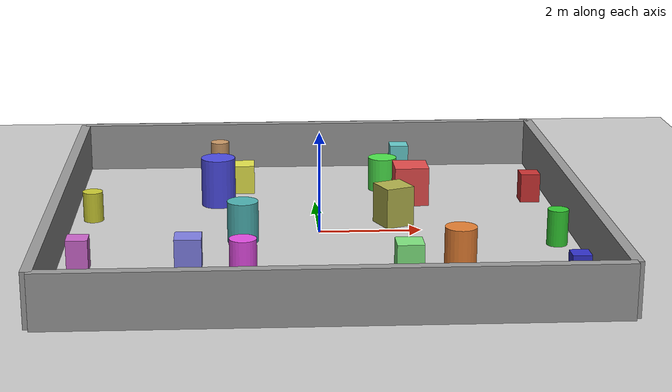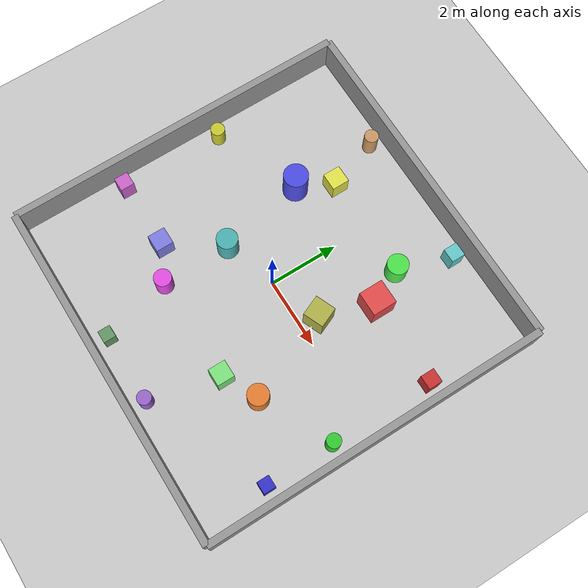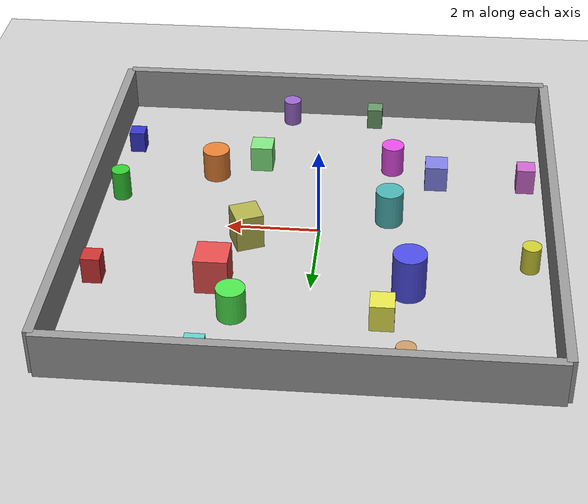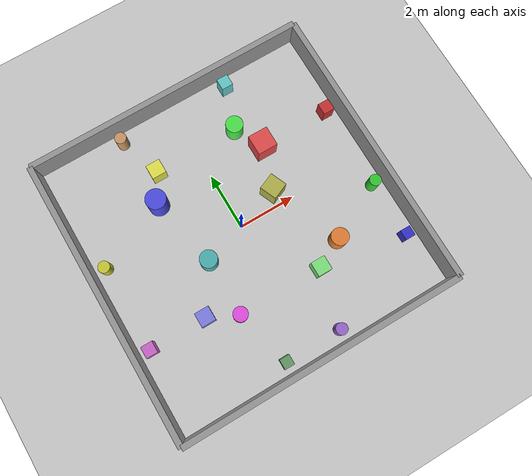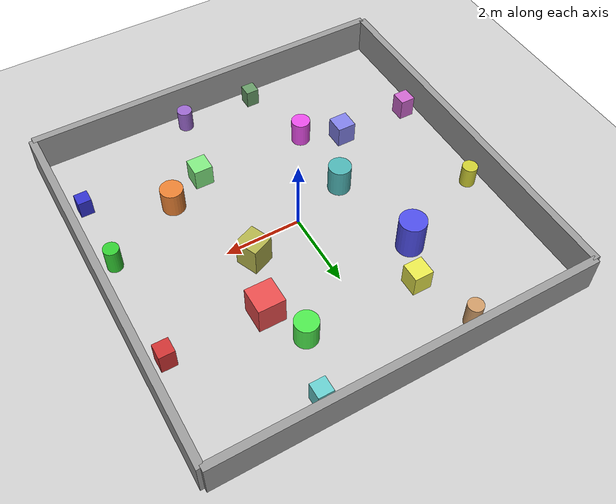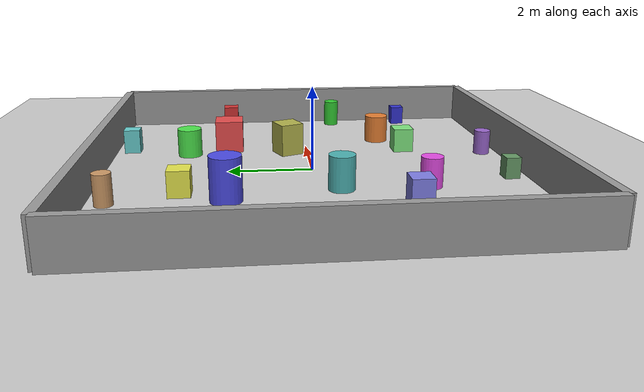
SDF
<?xml version="1.0" ?>
<sdf version="1.8">
  <world name="simple_dense_world">

    <!-- Physics settings -->
    <physics name="1ms" type="ignored">
      <max_step_size>0.001</max_step_size>
      <real_time_factor>1.0</real_time_factor>
      <real_time_update_rate>1000</real_time_update_rate>
    </physics>

    <!-- Required plugins for Gazebo Harmonic -->
    <plugin filename="gz-sim-physics-system" name="gz::sim::systems::Physics"/>
    <plugin filename="gz-sim-user-commands-system" name="gz::sim::systems::UserCommands"/>
    <plugin filename="gz-sim-scene-broadcaster-system" name="gz::sim::systems::SceneBroadcaster"/>
    <plugin filename="gz-sim-sensors-system" name="gz::sim::systems::Sensors">
      <render_engine>ogre2</render_engine>
    </plugin>
    <plugin filename="gz-sim-imu-system" name="gz::sim::systems::Imu"/>
    <plugin filename="gz-sim-contact-system" name="gz::sim::systems::Contact"/>

    <!-- Lighting -->
    <light type="directional" name="sun">
      <cast_shadows>true</cast_shadows>
      <pose>0 0 10 0 0 0</pose>
      <diffuse>0.8 0.8 0.8 1</diffuse>
      <specular>0.2 0.2 0.2 1</specular>
      <attenuation>
        <range>1000</range>
        <constant>0.9</constant>
        <linear>0.01</linear>
        <quadratic>0.001</quadratic>
      </attenuation>
      <direction>-0.5 0.1 -0.9</direction>
    </light>

    <!-- Ground plane -->
    <model name="ground_plane">
      <static>true</static>
      <link name="link">
        <collision name="collision">
          <geometry>
            <plane>
              <normal>0 0 1</normal>
              <size>100 100</size>
            </plane>
          </geometry>
          <surface>
            <friction>
              <ode>
                <mu>100</mu>
                <mu2>50</mu2>
              </ode>
            </friction>
          </surface>
        </collision>
        <visual name="visual">
          <geometry>
            <plane>
              <normal>0 0 1</normal>
              <size>100 100</size>
            </plane>
          </geometry>
          <material>
            <ambient>0.8 0.8 0.8 1</ambient>
            <diffuse>0.8 0.8 0.8 1</diffuse>
            <specular>0.8 0.8 0.8 1</specular>
          </material>
        </visual>
      </link>
    </model>

    <!-- Room walls - 10m x 10m room -->
    <!-- North wall -->
    <model name="wall_north">
      <static>true</static>
      <pose>0 5 0.5 0 0 0</pose>
      <link name="link">
        <collision name="collision">
          <geometry>
            <box><size>10 0.2 1.0</size></box>
          </geometry>
        </collision>
        <visual name="visual">
          <geometry>
            <box><size>10 0.2 1.0</size></box>
          </geometry>
          <material>
            <ambient>0.6 0.6 0.6 1</ambient>
            <diffuse>0.6 0.6 0.6 1</diffuse>
          </material>
        </visual>
      </link>
    </model>

    <!-- South wall -->
    <model name="wall_south">
      <static>true</static>
      <pose>0 -5 0.5 0 0 0</pose>
      <link name="link">
        <collision name="collision">
          <geometry>
            <box><size>10 0.2 1.0</size></box>
          </geometry>
        </collision>
        <visual name="visual">
          <geometry>
            <box><size>10 0.2 1.0</size></box>
          </geometry>
          <material>
            <ambient>0.6 0.6 0.6 1</ambient>
            <diffuse>0.6 0.6 0.6 1</diffuse>
          </material>
        </visual>
      </link>
    </model>

    <!-- East wall -->
    <model name="wall_east">
      <static>true</static>
      <pose>5 0 0.5 0 0 0</pose>
      <link name="link">
        <collision name="collision">
          <geometry>
            <box><size>0.2 10 1.0</size></box>
          </geometry>
        </collision>
        <visual name="visual">
          <geometry>
            <box><size>0.2 10 1.0</size></box>
          </geometry>
          <material>
            <ambient>0.6 0.6 0.6 1</ambient>
            <diffuse>0.6 0.6 0.6 1</diffuse>
          </material>
        </visual>
      </link>
    </model>

    <!-- West wall -->
    <model name="wall_west">
      <static>true</static>
      <pose>-5 0 0.5 0 0 0</pose>
      <link name="link">
        <collision name="collision">
          <geometry>
            <box><size>0.2 10 1.0</size></box>
          </geometry>
        </collision>
        <visual name="visual">
          <geometry>
            <box><size>0.2 10 1.0</size></box>
          </geometry>
          <material>
            <ambient>0.6 0.6 0.6 1</ambient>
            <diffuse>0.6 0.6 0.6 1</diffuse>
          </material>
        </visual>
      </link>
    </model>

    <!-- OBSTACLES - Distributed throughout for SLAM features -->

    <!-- === OUTER EDGE: Between trajectory and walls === -->

    <!-- East edge (between x=4 path and x=5 wall) -->
    <model name="obs_east_1">
      <static>true</static>
      <pose>4.5 2 0.3 0 0 0</pose>
      <link name="link">
        <collision name="collision">
          <geometry><box><size>0.4 0.4 0.6</size></box></geometry>
        </collision>
        <visual name="visual">
          <geometry><box><size>0.4 0.4 0.6</size></box></geometry>
          <material>
            <ambient>0.8 0.2 0.2 1</ambient>
            <diffuse>0.8 0.2 0.2 1</diffuse>
          </material>
        </visual>
      </link>
    </model>

    <model name="obs_east_2">
      <static>true</static>
      <pose>4.5 -1 0.35 0 0 0</pose>
      <link name="link">
        <collision name="collision">
          <geometry><cylinder><radius>0.2</radius><length>0.7</length></cylinder></geometry>
        </collision>
        <visual name="visual">
          <geometry><cylinder><radius>0.2</radius><length>0.7</length></cylinder></geometry>
          <material>
            <ambient>0.2 0.8 0.2 1</ambient>
            <diffuse>0.2 0.8 0.2 1</diffuse>
          </material>
        </visual>
      </link>
    </model>

    <model name="obs_east_3">
      <static>true</static>
      <pose>4.5 -3 0.25 0 0 0</pose>
      <link name="link">
        <collision name="collision">
          <geometry><box><size>0.35 0.35 0.5</size></box></geometry>
        </collision>
        <visual name="visual">
          <geometry><box><size>0.35 0.35 0.5</size></box></geometry>
          <material>
            <ambient>0.2 0.2 0.8 1</ambient>
            <diffuse>0.2 0.2 0.8 1</diffuse>
          </material>
        </visual>
      </link>
    </model>

    <!-- West edge (between x=-4 path and x=-5 wall) -->
    <model name="obs_west_1">
      <static>true</static>
      <pose>-4.5 1 0.3 0 0 0</pose>
      <link name="link">
        <collision name="collision">
          <geometry><cylinder><radius>0.2</radius><length>0.6</length></cylinder></geometry>
        </collision>
        <visual name="visual">
          <geometry><cylinder><radius>0.2</radius><length>0.6</length></cylinder></geometry>
          <material>
            <ambient>0.8 0.8 0.2 1</ambient>
            <diffuse>0.8 0.8 0.2 1</diffuse>
          </material>
        </visual>
      </link>
    </model>

    <model name="obs_west_2">
      <static>true</static>
      <pose>-4.5 -2 0.3 0 0 0</pose>
      <link name="link">
        <collision name="collision">
          <geometry><box><size>0.4 0.4 0.6</size></box></geometry>
        </collision>
        <visual name="visual">
          <geometry><box><size>0.4 0.4 0.6</size></box></geometry>
          <material>
            <ambient>0.8 0.4 0.8 1</ambient>
            <diffuse>0.8 0.4 0.8 1</diffuse>
          </material>
        </visual>
      </link>
    </model>

    <!-- North edge (between y=4 path and y=5 wall) -->
    <model name="obs_north_1">
      <static>true</static>
      <pose>2 4.5 0.3 0 0 0</pose>
      <link name="link">
        <collision name="collision">
          <geometry><box><size>0.4 0.4 0.6</size></box></geometry>
        </collision>
        <visual name="visual">
          <geometry><box><size>0.4 0.4 0.6</size></box></geometry>
          <material>
            <ambient>0.4 0.8 0.8 1</ambient>
            <diffuse>0.4 0.8 0.8 1</diffuse>
          </material>
        </visual>
      </link>
    </model>

    <model name="obs_north_2">
      <static>true</static>
      <pose>-2 4.5 0.35 0 0 0</pose>
      <link name="link">
        <collision name="collision">
          <geometry><cylinder><radius>0.2</radius><length>0.7</length></cylinder></geometry>
        </collision>
        <visual name="visual">
          <geometry><cylinder><radius>0.2</radius><length>0.7</length></cylinder></geometry>
          <material>
            <ambient>0.8 0.6 0.4 1</ambient>
            <diffuse>0.8 0.6 0.4 1</diffuse>
          </material>
        </visual>
      </link>
    </model>

    <!-- South edge (between y=-4 path and y=-5 wall) -->
    <model name="obs_south_1">
      <static>true</static>
      <pose>1 -4.5 0.3 0 0 0</pose>
      <link name="link">
        <collision name="collision">
          <geometry><cylinder><radius>0.2</radius><length>0.6</length></cylinder></geometry>
        </collision>
        <visual name="visual">
          <geometry><cylinder><radius>0.2</radius><length>0.6</length></cylinder></geometry>
          <material>
            <ambient>0.6 0.4 0.8 1</ambient>
            <diffuse>0.6 0.4 0.8 1</diffuse>
          </material>
        </visual>
      </link>
    </model>

    <model name="obs_south_2">
      <static>true</static>
      <pose>-1 -4.5 0.25 0 0 0</pose>
      <link name="link">
        <collision name="collision">
          <geometry><box><size>0.35 0.35 0.5</size></box></geometry>
        </collision>
        <visual name="visual">
          <geometry><box><size>0.35 0.35 0.5</size></box></geometry>
          <material>
            <ambient>0.4 0.6 0.4 1</ambient>
            <diffuse>0.4 0.6 0.4 1</diffuse>
          </material>
        </visual>
      </link>
    </model>

    <!-- === INTERIOR: Quadrant obstacles === -->

    <!-- Northeast quadrant (x>0, y>0, inside trajectory) -->
    <model name="obs_ne_1">
      <static>true</static>
      <pose>2 2 0.4 0 0 0</pose>
      <link name="link">
        <collision name="collision">
          <geometry><box><size>0.7 0.7 0.8</size></box></geometry>
        </collision>
        <visual name="visual">
          <geometry><box><size>0.7 0.7 0.8</size></box></geometry>
          <material>
            <ambient>0.9 0.3 0.3 1</ambient>
            <diffuse>0.9 0.3 0.3 1</diffuse>
          </material>
        </visual>
      </link>
    </model>

    <model name="obs_ne_2">
      <static>true</static>
      <pose>1.5 3 0.35 0 0 0</pose>
      <link name="link">
        <collision name="collision">
          <geometry><cylinder><radius>0.3</radius><length>0.7</length></cylinder></geometry>
        </collision>
        <visual name="visual">
          <geometry><cylinder><radius>0.3</radius><length>0.7</length></cylinder></geometry>
          <material>
            <ambient>0.3 0.9 0.3 1</ambient>
            <diffuse>0.3 0.9 0.3 1</diffuse>
          </material>
        </visual>
      </link>
    </model>

    <!-- Northwest quadrant (x<0, y>0, inside trajectory) -->
    <model name="obs_nw_1">
      <static>true</static>
      <pose>-2 2 0.5 0 0 0</pose>
      <link name="link">
        <collision name="collision">
          <geometry><cylinder><radius>0.35</radius><length>1.0</length></cylinder></geometry>
        </collision>
        <visual name="visual">
          <geometry><cylinder><radius>0.35</radius><length>1.0</length></cylinder></geometry>
          <material>
            <ambient>0.3 0.3 0.9 1</ambient>
            <diffuse>0.3 0.3 0.9 1</diffuse>
          </material>
        </visual>
      </link>
    </model>

    <model name="obs_nw_2">
      <static>true</static>
      <pose>-1.5 3 0.3 0 0 0</pose>
      <link name="link">
        <collision name="collision">
          <geometry><box><size>0.5 0.5 0.6</size></box></geometry>
        </collision>
        <visual name="visual">
          <geometry><box><size>0.5 0.5 0.6</size></box></geometry>
          <material>
            <ambient>0.9 0.9 0.3 1</ambient>
            <diffuse>0.9 0.9 0.3 1</diffuse>
          </material>
        </visual>
      </link>
    </model>

    <!-- Southeast quadrant (x>0, y<0, inside trajectory) -->
    <model name="obs_se_1">
      <static>true</static>
      <pose>2.5 -2 0.35 0 0 0</pose>
      <link name="link">
        <collision name="collision">
          <geometry><cylinder><radius>0.3</radius><length>0.7</length></cylinder></geometry>
        </collision>
        <visual name="visual">
          <geometry><cylinder><radius>0.3</radius><length>0.7</length></cylinder></geometry>
          <material>
            <ambient>0.9 0.5 0.2 1</ambient>
            <diffuse>0.9 0.5 0.2 1</diffuse>
          </material>
        </visual>
      </link>
    </model>

    <model name="obs_se_2">
      <static>true</static>
      <pose>1.5 -2.5 0.3 0 0 0</pose>
      <link name="link">
        <collision name="collision">
          <geometry><box><size>0.5 0.5 0.6</size></box></geometry>
        </collision>
        <visual name="visual">
          <geometry><box><size>0.5 0.5 0.6</size></box></geometry>
          <material>
            <ambient>0.5 0.9 0.5 1</ambient>
            <diffuse>0.5 0.9 0.5 1</diffuse>
          </material>
        </visual>
      </link>
    </model>

    <!-- Southwest quadrant (x<0, y<0, inside trajectory) -->
    <model name="obs_sw_1">
      <static>true</static>
      <pose>-2.5 -2 0.3 0 0 0</pose>
      <link name="link">
        <collision name="collision">
          <geometry><box><size>0.5 0.5 0.6</size></box></geometry>
        </collision>
        <visual name="visual">
          <geometry><box><size>0.5 0.5 0.6</size></box></geometry>
          <material>
            <ambient>0.5 0.5 0.9 1</ambient>
            <diffuse>0.5 0.5 0.9 1</diffuse>
          </material>
        </visual>
      </link>
    </model>

    <model name="obs_sw_2">
      <static>true</static>
      <pose>-1.5 -2.5 0.35 0 0 0</pose>
      <link name="link">
        <collision name="collision">
          <geometry><cylinder><radius>0.25</radius><length>0.7</length></cylinder></geometry>
        </collision>
        <visual name="visual">
          <geometry><cylinder><radius>0.25</radius><length>0.7</length></cylinder></geometry>
          <material>
            <ambient>0.9 0.3 0.9 1</ambient>
            <diffuse>0.9 0.3 0.9 1</diffuse>
          </material>
        </visual>
      </link>
    </model>

    <!-- === CENTER: Near origin (but offset from x=0 path) === -->
    <model name="obs_center_1">
      <static>true</static>
      <pose>1.5 0.5 0.4 0 0 0.4</pose>
      <link name="link">
        <collision name="collision">
          <geometry><box><size>0.6 0.6 0.8</size></box></geometry>
        </collision>
        <visual name="visual">
          <geometry><box><size>0.6 0.6 0.8</size></box></geometry>
          <material>
            <ambient>0.7 0.7 0.3 1</ambient>
            <diffuse>0.7 0.7 0.3 1</diffuse>
          </material>
        </visual>
      </link>
    </model>

    <model name="obs_center_2">
      <static>true</static>
      <pose>-1.5 -0.5 0.4 0 0 0</pose>
      <link name="link">
        <collision name="collision">
          <geometry><cylinder><radius>0.3</radius><length>0.8</length></cylinder></geometry>
        </collision>
        <visual name="visual">
          <geometry><cylinder><radius>0.3</radius><length>0.8</length></cylinder></geometry>
          <material>
            <ambient>0.3 0.7 0.7 1</ambient>
            <diffuse>0.3 0.7 0.7 1</diffuse>
          </material>
        </visual>
      </link>
    </model>

  </world>
</sdf>
